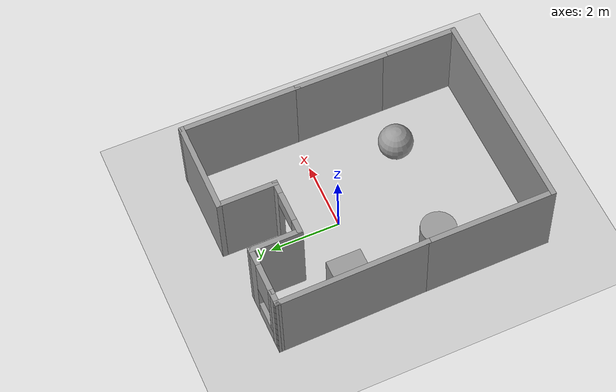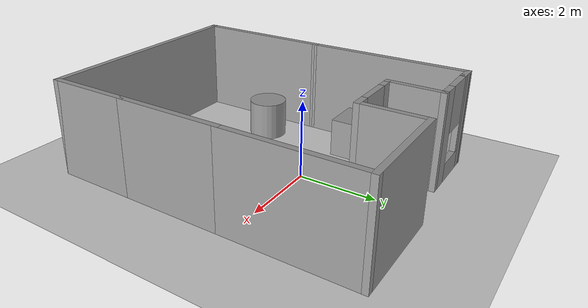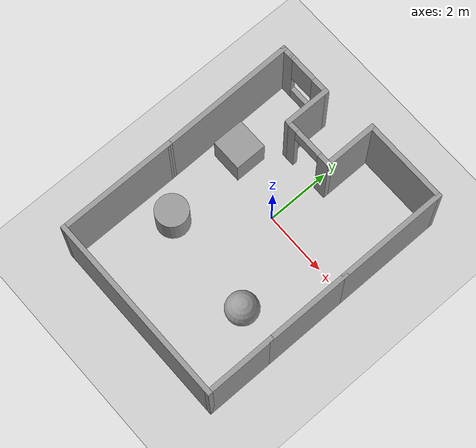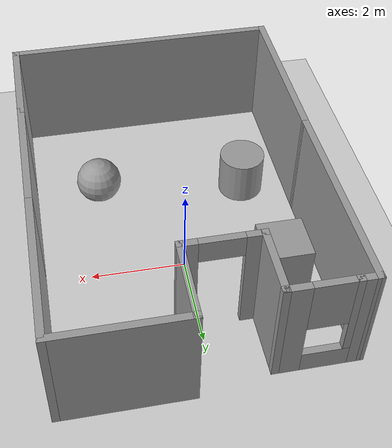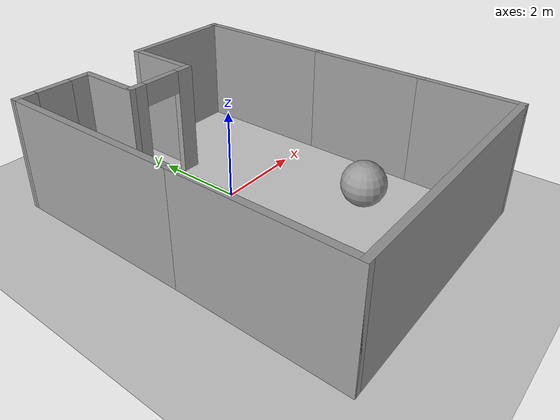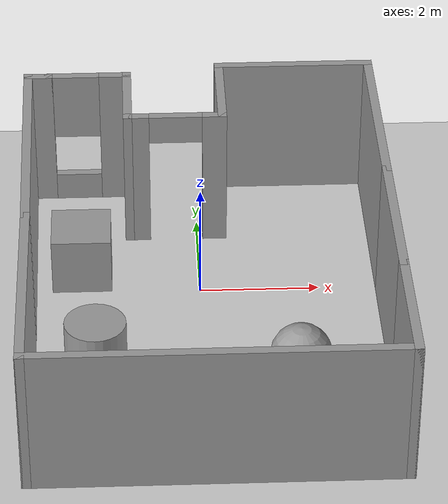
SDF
<sdf version="1.6">
 <world name="default">
  <light name="sun" type="directional">
   <pose>0 0 10 0 -0 0</pose>
   <diffuse>0.8 0.8 0.8 1</diffuse>
   <specular>0.2 0.2 0.2 1</specular>
   <attenuation>
    <range>1000</range>
    <constant>0.9</constant>
    <linear>0.01</linear>
    <quadratic>0.001</quadratic>
   </attenuation>
   <direction>-0.5 0.1 -0.9</direction>
  </light>
  <model name="ground_plane">
   <static>1</static>
   <link name="link">
    <collision name="collision">
     <geometry><plane><normal>0 0 1</normal><size>100 100</size></plane></geometry>
     <surface>
      <contact><collide_bitmask>65535</collide_bitmask></contact>
      <friction><ode><mu>100</mu><mu2>50</mu2></ode></friction>
     </surface>
    </collision>
    <visual name="visual">
     <cast_shadows>0</cast_shadows>
     <geometry><plane><normal>0 0 1</normal><size>100 100</size></plane></geometry>
     <material>
      <script><uri>file://media/materials/scripts/gazebo.material</uri><name>Gazebo/Grey</name></script>
     </material>
    </visual>
   </link>
  </model>
  <gravity>0 0 -9.8</gravity>
  <magnetic_field>6e-06 2.3e-05 -4.2e-05</magnetic_field>
  <atmosphere type="adiabatic"/>
  <physics name="default_physics" default="0" type="ode">
   <max_step_size>0.001</max_step_size>
   <real_time_factor>1</real_time_factor>
   <real_time_update_rate>1000</real_time_update_rate>
  </physics>
  <scene><ambient>0.4 0.4 0.4 1</ambient><background>0.7 0.7 0.7 1</background><shadows>1</shadows></scene>
  <spherical_coordinates>
   <surface_model>EARTH_WGS84</surface_model>
   <latitude_deg>0</latitude_deg>
   <longitude_deg>0</longitude_deg>
   <elevation>0</elevation>
   <heading_deg>0</heading_deg>
  </spherical_coordinates>
  <model name="test.model">
   <pose>0.079556 -0.835 0 0 -0 0</pose>
   <link name="Wall_0">
    <collision name="Wall_0_Collision">
     <geometry><box><size>3.75 0.15 2.5</size></box></geometry>
     <pose>0 0 1.25 0 -0 0</pose>
    </collision>
    <visual name="Wall_0_Visual">
     <pose>0 0 1.25 0 -0 0</pose>
     <geometry><box><size>3.75 0.15 2.5</size></box></geometry>
     <material>
      <script><uri>file://media/materials/scripts/gazebo.material</uri><name>Gazebo/Grey</name></script>
      <ambient>1 1 1 1</ambient>
     </material>
     <meta><layer>0</layer></meta>
    </visual>
    <pose>-2.89956 -2.225 0 0 -0 -1.5708</pose>
   </link>
   <link name="Wall_1">
    <collision name="Wall_1_Collision">
     <geometry><box><size>6 0.15 2.5</size></box></geometry>
     <pose>0 0 1.25 0 -0 0</pose>
    </collision>
    <visual name="Wall_1_Visual">
     <pose>0 0 1.25 0 -0 0</pose>
     <geometry><box><size>6 0.15 2.5</size></box></geometry>
     <material>
      <script><uri>file://media/materials/scripts/gazebo.material</uri><name>Gazebo/Grey</name></script>
      <ambient>1 1 1 1</ambient>
     </material>
     <meta><layer>0</layer></meta>
    </visual>
    <pose>0.025444 -4.025 0 0 -0 0</pose>
   </link>
   <link name="Wall_10">
    <collision name="Wall_10_Collision">
     <geometry><box><size>0.5 0.15 2.5</size></box></geometry>
     <pose>0 0 1.25 0 -0 0</pose>
    </collision>
    <visual name="Wall_10_Visual">
     <pose>0 0 1.25 0 -0 0</pose>
     <geometry><box><size>0.5 0.15 2.5</size></box></geometry>
     <material>
      <script><uri>file://media/materials/scripts/gazebo.material</uri><name>Gazebo/Grey</name></script>
      <ambient>1 1 1 1</ambient>
     </material>
     <meta><layer>0</layer></meta>
    </visual>
    <pose>-2.77456 3.775 0 0 -0 3.14159</pose>
   </link>
   <link name="Wall_11">
    <collision name="Wall_11_Collision">
     <geometry><box><size>4.3503 0.15 2.5</size></box></geometry>
     <pose>0 0 1.25 0 -0 0</pose>
    </collision>
    <visual name="Wall_11_Visual">
     <pose>0 0 1.25 0 -0 0</pose>
     <geometry><box><size>4.3503 0.15 2.5</size></box></geometry>
     <material>
      <script><uri>file://media/materials/scripts/gazebo.material</uri><name>Gazebo/Grey</name></script>
      <ambient>1 1 1 1</ambient>
     </material>
     <meta><layer>0</layer></meta>
    </visual>
    <pose>-2.92456 1.675 0 0 -0 -1.55889</pose>
   </link>
   <link name="Wall_2">
    <collision name="Wall_2_Collision">
     <geometry><box><size>2.25 0.15 2.5</size></box></geometry>
     <pose>0 0 1.25 0 -0 0</pose>
    </collision>
    <visual name="Wall_2_Visual">
     <pose>0 0 1.25 0 -0 0</pose>
     <geometry><box><size>2.25 0.15 2.5</size></box></geometry>
     <material>
      <script><uri>file://media/materials/scripts/gazebo.material</uri><name>Gazebo/Grey</name></script>
      <ambient>1 1 1 1</ambient>
     </material>
     <meta><layer>0</layer></meta>
    </visual>
    <pose>2.95044 -2.975 0 0 -0 1.5708</pose>
   </link>
   <link name="Wall_3">
    <collision name="Wall_3_Collision">
     <geometry><box><size>2.75 0.15 2.5</size></box></geometry>
     <pose>0 0 1.25 0 -0 0</pose>
    </collision>
    <visual name="Wall_3_Visual">
     <pose>0 0 1.25 0 -0 0</pose>
     <geometry><box><size>2.75 0.15 2.5</size></box></geometry>
     <material>
      <script><uri>file://media/materials/scripts/gazebo.material</uri><name>Gazebo/Grey</name></script>
      <ambient>1 1 1 1</ambient>
     </material>
     <meta><layer>0</layer></meta>
    </visual>
    <pose>2.95044 -0.625 0 0 -0 1.5708</pose>
   </link>
   <link name="Wall_4">
    <collision name="Wall_4_Collision">
     <geometry><box><size>3.5 0.15 2.5</size></box></geometry>
     <pose>0 0 1.25 0 -0 0</pose>
    </collision>
    <visual name="Wall_4_Visual">
     <pose>0 0 1.25 0 -0 0</pose>
     <geometry><box><size>3.5 0.15 2.5</size></box></geometry>
     <material>
      <script><uri>file://media/materials/scripts/gazebo.material</uri><name>Gazebo/Grey</name></script>
      <ambient>1 1 1 1</ambient>
     </material>
     <meta><layer>0</layer></meta>
    </visual>
    <pose>2.95044 2.35 0 0 -0 1.5708</pose>
   </link>
   <link name="Wall_5">
    <collision name="Wall_5_Collision">
     <geometry><box><size>2.75 0.15 2.5</size></box></geometry>
     <pose>0 0 1.25 0 -0 0</pose>
    </collision>
    <visual name="Wall_5_Visual">
     <pose>0 0 1.25 0 -0 0</pose>
     <geometry><box><size>2.75 0.15 2.5</size></box></geometry>
     <material>
      <script><uri>file://media/materials/scripts/gazebo.material</uri><name>Gazebo/Grey</name></script>
      <ambient>1 1 1 1</ambient>
     </material>
     <meta><layer>0</layer></meta>
    </visual>
    <pose>1.65044 4.025 0 0 -0 3.14159</pose>
   </link>
   <link name="Wall_6">
    <collision name="Wall_6_Collision">
     <geometry><box><size>1.75 0.15 2.5</size></box></geometry>
     <pose>0 0 1.25 0 -0 0</pose>
    </collision>
    <visual name="Wall_6_Visual">
     <pose>0 0 1.25 0 -0 0</pose>
     <geometry><box><size>1.75 0.15 2.5</size></box></geometry>
     <material>
      <script><uri>file://media/materials/scripts/gazebo.material</uri><name>Gazebo/Grey</name></script>
      <ambient>1 1 1 1</ambient>
     </material>
     <meta><layer>0</layer></meta>
    </visual>
    <pose>0.350444 3.225 0 0 -0 -1.5708</pose>
   </link>
   <link name="Wall_7">
    <pose>-0.449556 2.425 0 0 -0 3.14159</pose>
    <visual name="Wall_7_Visual_0">
     <pose>-0.667661 0 1.25 0 -0 0</pose>
     <geometry><box><size>0.414678 0.15 2.5</size></box></geometry>
     <material>
      <script><uri>file://media/materials/scripts/gazebo.material</uri><name>Gazebo/Grey</name></script>
      <ambient>1 1 1 1</ambient>
     </material>
     <meta><layer>0</layer></meta>
    </visual>
    <collision name="Wall_7_Collision_0">
     <geometry><box><size>0.414678 0.15 2.5</size></box></geometry>
     <pose>-0.667661 0 1.25 0 -0 0</pose>
    </collision>
    <visual name="Wall_7_Visual_1">
     <pose>0.657339 0 1.25 0 -0 0</pose>
     <geometry><box><size>0.435322 0.15 2.5</size></box></geometry>
     <material>
      <script><uri>file://media/materials/scripts/gazebo.material</uri><name>Gazebo/Grey</name></script>
      <ambient>1 1 1 1</ambient>
     </material>
     <meta><layer>0</layer></meta>
    </visual>
    <collision name="Wall_7_Collision_1">
     <geometry><box><size>0.435322 0.15 2.5</size></box></geometry>
     <pose>0.657339 0 1.25 0 -0 0</pose>
    </collision>
    <visual name="Wall_7_Visual_2">
     <pose>-0.010322 0 2.25 0 -0 0</pose>
     <geometry><box><size>0.9 0.15 0.5</size></box></geometry>
     <material>
      <script><uri>file://media/materials/scripts/gazebo.material</uri><name>Gazebo/Grey</name></script>
      <ambient>1 1 1 1</ambient>
     </material>
     <meta><layer>0</layer></meta>
    </visual>
    <collision name="Wall_7_Collision_2">
     <geometry><box><size>0.9 0.15 0.5</size></box></geometry>
     <pose>-0.010322 0 2.25 0 -0 0</pose>
    </collision>
   </link>
   <link name="Wall_8">
    <collision name="Wall_8_Collision">
     <geometry><box><size>1.5 0.15 2.5</size></box></geometry>
     <pose>0 0 1.25 0 -0 0</pose>
    </collision>
    <visual name="Wall_8_Visual">
     <pose>0 0 1.25 0 -0 0</pose>
     <geometry><box><size>1.5 0.15 2.5</size></box></geometry>
     <material>
      <script><uri>file://media/materials/scripts/gazebo.material</uri><name>Gazebo/Grey</name></script>
      <ambient>1 1 1 1</ambient>
     </material>
     <meta><layer>0</layer></meta>
    </visual>
    <pose>-1.24956 3.1 0 0 -0 1.5708</pose>
   </link>
   <link name="Wall_9">
    <pose>-1.92456 3.775 0 0 -0 3.14159</pose>
    <visual name="Wall_9_Visual_0">
     <pose>-0.472411 0 1.25 0 -0 0</pose>
     <geometry><box><size>0.555178 0.15 2.5</size></box></geometry>
     <material>
      <script><uri>file://media/materials/scripts/gazebo.material</uri><name>Gazebo/Grey</name></script>
      <ambient>1 1 1 1</ambient>
     </material>
     <meta><layer>0</layer></meta>
    </visual>
    <collision name="Wall_9_Collision_0">
     <geometry><box><size>0.555178 0.15 2.5</size></box></geometry>
     <pose>-0.472411 0 1.25 0 -0 0</pose>
    </collision>
    <visual name="Wall_9_Visual_1">
     <pose>0.277589 0 0.25 0 -0 0</pose>
     <geometry><box><size>0.944822 0.15 0.5</size></box></geometry>
     <material>
      <script><uri>file://media/materials/scripts/gazebo.material</uri><name>Gazebo/Grey</name></script>
      <ambient>1 1 1 1</ambient>
     </material>
     <meta><layer>0</layer></meta>
    </visual>
    <collision name="Wall_9_Collision_1">
     <geometry><box><size>0.944822 0.15 0.5</size></box></geometry>
     <pose>0.277589 0 0.25 0 -0 0</pose>
    </collision>
    <visual name="Wall_9_Visual_2">
     <pose>0.677589 0 1.5 0 -0 0</pose>
     <geometry><box><size>0.144822 0.15 2</size></box></geometry>
     <material>
      <script><uri>file://media/materials/scripts/gazebo.material</uri><name>Gazebo/Grey</name></script>
      <ambient>1 1 1 1</ambient>
     </material>
     <meta><layer>0</layer></meta>
    </visual>
    <collision name="Wall_9_Collision_2">
     <geometry><box><size>0.144822 0.15 2</size></box></geometry>
     <pose>0.677589 0 1.5 0 -0 0</pose>
    </collision>
    <visual name="Wall_9_Visual_3">
     <pose>0.205178 0 1.9 0 -0 0</pose>
     <geometry><box><size>0.8 0.15 1.2</size></box></geometry>
     <material>
      <script><uri>file://media/materials/scripts/gazebo.material</uri><name>Gazebo/Grey</name></script>
      <ambient>1 1 1 1</ambient>
     </material>
     <meta><layer>0</layer></meta>
    </visual>
    <collision name="Wall_9_Collision_3">
     <geometry><box><size>0.8 0.15 1.2</size></box></geometry>
     <pose>0.205178 0 1.9 0 -0 0</pose>
    </collision>
   </link>
   <static>1</static>
  </model>
  <model name="unit_box">
   <pose>-1.99226 0.532329 0.499995 0 1e-05 0</pose>
   <link name="link">
    <inertial>
     <mass>1</mass>
     <inertia>
      <ixx>0.166667</ixx>
      <ixy>0</ixy>
      <ixz>0</ixz>
      <iyy>0.166667</iyy>
      <iyz>0</iyz>
      <izz>0.166667</izz>
     </inertia>
    </inertial>
    <collision name="collision"><geometry><box><size>1 1 1</size></box></geometry></collision>
    <visual name="visual">
     <geometry><box><size>1 1 1</size></box></geometry>
     <material>
      <script><name>Gazebo/Grey</name><uri>file://media/materials/scripts/gazebo.material</uri></script>
     </material>
    </visual>
   </link>
  </model>
  <model name="unit_cylinder">
   <pose>-1.75633 -2.14335 0.499993 -3e-06 -4e-06 -0</pose>
   <link name="link">
    <inertial>
     <mass>1</mass>
     <inertia><ixx>0.145833</ixx><ixy>0</ixy><ixz>0</ixz><iyy>0.145833</iyy><iyz>0</iyz><izz>0.125</izz></inertia>
    </inertial>
    <collision name="collision">
     <geometry><cylinder><radius>0.5</radius><length>1</length></cylinder></geometry>
    </collision>
    <visual name="visual">
     <geometry><cylinder><radius>0.5</radius><length>1</length></cylinder></geometry>
     <material>
      <script><name>Gazebo/Grey</name><uri>file://media/materials/scripts/gazebo.material</uri></script>
     </material>
    </visual>
   </link>
  </model>
  <model name="unit_sphere">
   <pose>1.52239 -2.42687 0.5 0 -0 0</pose>
   <link name="link">
    <inertial>
     <mass>1</mass>
     <inertia><ixx>0.1</ixx><ixy>0</ixy><ixz>0</ixz><iyy>0.1</iyy><iyz>0</iyz><izz>0.1</izz></inertia>
    </inertial>
    <collision name="collision"><geometry><sphere><radius>0.5</radius></sphere></geometry></collision>
    <visual name="visual">
     <geometry><sphere><radius>0.5</radius></sphere></geometry>
     <material>
      <script><name>Gazebo/Grey</name><uri>file://media/materials/scripts/gazebo.material</uri></script>
     </material>
    </visual>
   </link>
  </model>
 </world>
</sdf>
